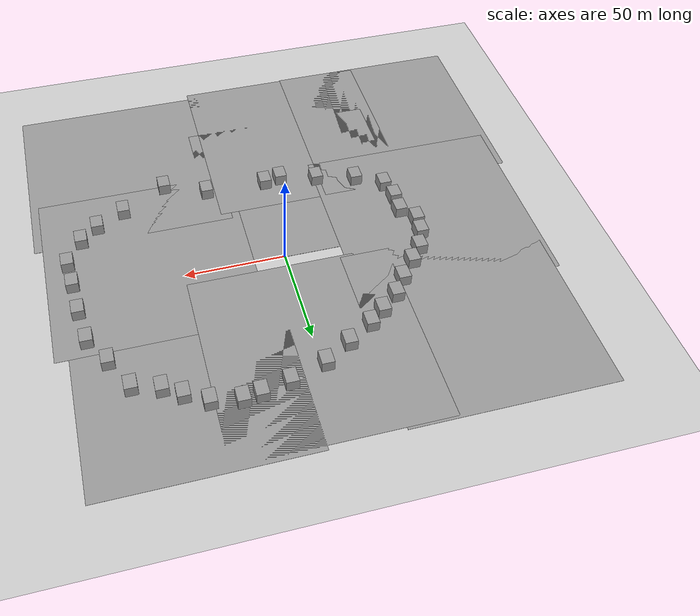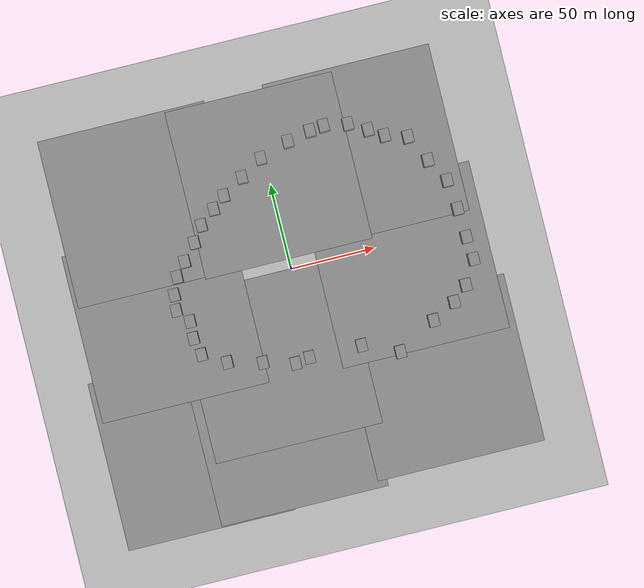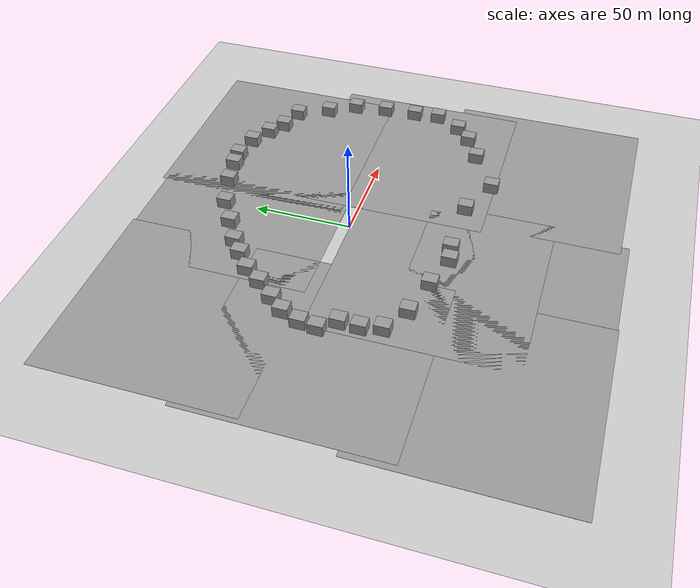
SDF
<sdf version="1.7">
 <world name="default">
  <light name="sun" type="directional">
   <pose>0 0 10 0 -0 0</pose>
   <diffuse>0.8 0.8 0.8 1</diffuse>
   <specular>0.2 0.2 0.2 1</specular>
   <attenuation>
    <range>1000</range>
    <constant>0.9</constant>
    <linear>0.01</linear>
    <quadratic>0.001</quadratic>
   </attenuation>
   <direction>-0.5 0.1 -0.9</direction>
   <spot><inner_angle>0</inner_angle><outer_angle>0</outer_angle><falloff>0</falloff></spot>
  </light>
  <plugin name="ros_interface_plugin" filename="librotors_gazebo_ros_interface_plugin.so"/>
  <model name="ground_plane">
   <static>1</static>
   <link name="link">
    <collision name="collision">
     <geometry><plane><normal>0 0 1</normal><size>100 100</size></plane></geometry>
     <surface>
      <contact><collide_bitmask>65535</collide_bitmask></contact>
      <friction><ode><mu>100</mu><mu2>50</mu2></ode></friction>
     </surface>
    </collision>
    <visual name="visual">
     <cast_shadows>0</cast_shadows>
     <geometry><plane><normal>0 0 1</normal><size>100 100</size></plane></geometry>
     <material>
      <script><uri>file://media/materials/scripts/gazebo.material</uri><name>Gazebo/Grey</name></script>
     </material>
    </visual>
   </link>
  </model>
  <gravity>0 0 -9.8</gravity>
  <magnetic_field>6e-06 2.3e-05 -4.2e-05</magnetic_field>
  <atmosphere type="adiabatic"/>
  <physics type="ode">
   <max_step_size>0.001</max_step_size>
   <real_time_factor>1</real_time_factor>
   <real_time_update_rate>1000</real_time_update_rate>
  </physics>
  <scene><ambient>0.4 0.4 0.4 1</ambient><background>0.7 0.7 0.7 1</background><shadows>1</shadows></scene>
  <spherical_coordinates>
   <surface_model>EARTH_WGS84</surface_model>
   <latitude_deg>0</latitude_deg>
   <longitude_deg>0</longitude_deg>
   <elevation>0</elevation>
   <heading_deg>0</heading_deg>
  </spherical_coordinates>
  <model name="ground_plane_0">
   <static>1</static>
   <link name="link">
    <collision name="collision">
     <geometry><plane><normal>0 0 1</normal><size>100 100</size></plane></geometry>
     <surface>
      <contact><collide_bitmask>65535</collide_bitmask></contact>
      <friction><ode><mu>100</mu><mu2>50</mu2></ode></friction>
     </surface>
    </collision>
    <visual name="visual">
     <cast_shadows>0</cast_shadows>
     <geometry><plane><normal>0 0 1</normal><size>100 100</size></plane></geometry>
     <material>
      <script><uri>file://media/materials/scripts/gazebo.material</uri><name>Gazebo/Grey</name></script>
     </material>
    </visual>
   </link>
   <pose>0.134979 55.8587 0 0 -0 0</pose>
  </model>
  <model name="ground_plane_1">
   <static>1</static>
   <link name="link">
    <collision name="collision">
     <geometry><plane><normal>0 0 1</normal><size>100 100</size></plane></geometry>
     <surface>
      <contact><collide_bitmask>65535</collide_bitmask></contact>
      <friction><ode><mu>100</mu><mu2>50</mu2></ode></friction>
     </surface>
    </collision>
    <visual name="visual">
     <cast_shadows>0</cast_shadows>
     <geometry><plane><normal>0 0 1</normal><size>100 100</size></plane></geometry>
     <material>
      <script><uri>file://media/materials/scripts/gazebo.material</uri><name>Gazebo/Grey</name></script>
     </material>
    </visual>
   </link>
   <pose>-76.0086 57.073 0 0 -0 0</pose>
  </model>
  <model name="ground_plane_2">
   <static>1</static>
   <link name="link">
    <collision name="collision">
     <geometry><plane><normal>0 0 1</normal><size>100 100</size></plane></geometry>
     <surface>
      <contact><collide_bitmask>65535</collide_bitmask></contact>
      <friction><ode><mu>100</mu><mu2>50</mu2></ode></friction>
     </surface>
    </collision>
    <visual name="visual">
     <cast_shadows>0</cast_shadows>
     <geometry><plane><normal>0 0 1</normal><size>100 100</size></plane></geometry>
     <material>
      <script><uri>file://media/materials/scripts/gazebo.material</uri><name>Gazebo/Grey</name></script>
     </material>
    </visual>
   </link>
   <pose>-78.2647 -11.3254 0 0 -0 0</pose>
  </model>
  <model name="ground_plane_3">
   <static>1</static>
   <link name="link">
    <collision name="collision">
     <geometry><plane><normal>0 0 1</normal><size>100 100</size></plane></geometry>
     <surface>
      <contact><collide_bitmask>65535</collide_bitmask></contact>
      <friction><ode><mu>100</mu><mu2>50</mu2></ode></friction>
     </surface>
    </collision>
    <visual name="visual">
     <cast_shadows>0</cast_shadows>
     <geometry><plane><normal>0 0 1</normal><size>100 100</size></plane></geometry>
     <material>
      <script><uri>file://media/materials/scripts/gazebo.material</uri><name>Gazebo/Grey</name></script>
     </material>
    </visual>
   </link>
   <pose>58.9506 58.0804 0 0 -0 0</pose>
  </model>
  <model name="ground_plane_4">
   <static>1</static>
   <link name="link">
    <collision name="collision">
     <geometry><plane><normal>0 0 1</normal><size>100 100</size></plane></geometry>
     <surface>
      <contact><collide_bitmask>65535</collide_bitmask></contact>
      <friction><ode><mu>100</mu><mu2>50</mu2></ode></friction>
     </surface>
    </collision>
    <visual name="visual">
     <cast_shadows>0</cast_shadows>
     <geometry><plane><normal>0 0 1</normal><size>100 100</size></plane></geometry>
     <material>
      <script><uri>file://media/materials/scripts/gazebo.material</uri><name>Gazebo/Grey</name></script>
     </material>
    </visual>
   </link>
   <pose>65.3897 -13.8592 0 0 -0 0</pose>
  </model>
  <model name="ground_plane_5">
   <static>1</static>
   <link name="link">
    <collision name="collision">
     <geometry><plane><normal>0 0 1</normal><size>100 100</size></plane></geometry>
     <surface>
      <contact><collide_bitmask>65535</collide_bitmask></contact>
      <friction><ode><mu>100</mu><mu2>50</mu2></ode></friction>
     </surface>
    </collision>
    <visual name="visual">
     <cast_shadows>0</cast_shadows>
     <geometry><plane><normal>0 0 1</normal><size>100 100</size></plane></geometry>
     <material>
      <script><uri>file://media/materials/scripts/gazebo.material</uri><name>Gazebo/Grey</name></script>
     </material>
    </visual>
   </link>
   <pose>-19.7587 -49.9788 0 0 -0 0</pose>
  </model>
  <model name="ground_plane_6">
   <static>1</static>
   <link name="link">
    <collision name="collision">
     <geometry><plane><normal>0 0 1</normal><size>100 100</size></plane></geometry>
     <surface>
      <contact><collide_bitmask>65535</collide_bitmask></contact>
      <friction><ode><mu>100</mu><mu2>50</mu2></ode></friction>
     </surface>
    </collision>
    <visual name="visual">
     <cast_shadows>0</cast_shadows>
     <geometry><plane><normal>0 0 1</normal><size>100 100</size></plane></geometry>
     <material>
      <script><uri>file://media/materials/scripts/gazebo.material</uri><name>Gazebo/Grey</name></script>
     </material>
    </visual>
   </link>
   <pose>69.4064 -82.4904 0 0 -0 0</pose>
  </model>
  <model name="ground_plane_7">
   <static>1</static>
   <link name="link">
    <collision name="collision">
     <geometry><plane><normal>0 0 1</normal><size>100 100</size></plane></geometry>
     <surface>
      <contact><collide_bitmask>65535</collide_bitmask></contact>
      <friction><ode><mu>100</mu><mu2>50</mu2></ode></friction>
     </surface>
    </collision>
    <visual name="visual">
     <cast_shadows>0</cast_shadows>
     <geometry><plane><normal>0 0 1</normal><size>100 100</size></plane></geometry>
     <material>
      <script><uri>file://media/materials/scripts/gazebo.material</uri><name>Gazebo/Grey</name></script>
     </material>
    </visual>
   </link>
   <pose>-25.341 -86.3777 0 0 -0 0</pose>
  </model>
  <model name="ground_plane_8">
   <static>1</static>
   <link name="link">
    <collision name="collision">
     <geometry><plane><normal>0 0 1</normal><size>100 100</size></plane></geometry>
     <surface>
      <contact><collide_bitmask>65535</collide_bitmask></contact>
      <friction><ode><mu>100</mu><mu2>50</mu2></ode></friction>
     </surface>
    </collision>
    <visual name="visual">
     <cast_shadows>0</cast_shadows>
     <geometry><plane><normal>0 0 1</normal><size>100 100</size></plane></geometry>
     <material>
      <script><uri>file://media/materials/scripts/gazebo.material</uri><name>Gazebo/Grey</name></script>
     </material>
    </visual>
   </link>
   <pose>-81.2843 -86.9604 0 0 -0 0</pose>
  </model>
  <model name="unit_box">
   <pose>-64.2534 -15.6959 3 -1e-06 0 0.002261</pose>
   <link name="link">
    <inertial>
     <mass>1</mass>
     <inertia>
      <ixx>0.166667</ixx>
      <ixy>0</ixy>
      <ixz>0</ixz>
      <iyy>0.166667</iyy>
      <iyz>0</iyz>
      <izz>0.166667</izz>
     </inertia>
    </inertial>
    <collision name="collision"><geometry><box><size>6 7.49447 6</size></box></geometry></collision>
    <visual name="visual">
     <geometry><box><size>6 7.49447 6</size></box></geometry>
     <material>
      <script><name>Gazebo/Grey</name><uri>file://media/materials/scripts/gazebo.material</uri></script>
     </material>
    </visual>
   </link>
  </model>
  <model name="unit_box_clone">
   <pose>-64.7219 -25.7215 3 -1e-06 0 0.002261</pose>
   <link name="link">
    <inertial>
     <mass>1</mass>
     <inertia>
      <ixx>0.166667</ixx>
      <ixy>0</ixy>
      <ixz>0</ixz>
      <iyy>0.166667</iyy>
      <iyz>0</iyz>
      <izz>0.166667</izz>
     </inertia>
    </inertial>
    <collision name="collision"><geometry><box><size>6 7.49448 6</size></box></geometry></collision>
    <visual name="visual">
     <geometry><box><size>6 7.49448 6</size></box></geometry>
     <material>
      <script><name>Gazebo/Grey</name><uri>file://media/materials/scripts/gazebo.material</uri></script>
     </material>
    </visual>
   </link>
  </model>
  <model name="unit_box_clone_0">
   <pose>-62.4511 -36 3 1e-06 -0 0.002156</pose>
   <link name="link">
    <inertial>
     <mass>1</mass>
     <inertia>
      <ixx>0.166667</ixx>
      <ixy>0</ixy>
      <ixz>0</ixz>
      <iyy>0.166667</iyy>
      <iyz>0</iyz>
      <izz>0.166667</izz>
     </inertia>
    </inertial>
    <collision name="collision"><geometry><box><size>6 7.49448 6</size></box></geometry></collision>
    <visual name="visual">
     <geometry><box><size>6 7.49448 6</size></box></geometry>
     <material>
      <script><name>Gazebo/Grey</name><uri>file://media/materials/scripts/gazebo.material</uri></script>
     </material>
    </visual>
   </link>
  </model>
  <model name="unit_box_clone_1">
   <pose>-49 -44 3 1e-06 0 0.002052</pose>
   <link name="link">
    <inertial>
     <mass>1</mass>
     <inertia>
      <ixx>0.166667</ixx>
      <ixy>0</ixy>
      <ixz>0</ixz>
      <iyy>0.166667</iyy>
      <iyz>0</iyz>
      <izz>0.166667</izz>
     </inertia>
    </inertial>
    <collision name="collision"><geometry><box><size>6 7.49448 6</size></box></geometry></collision>
    <visual name="visual">
     <geometry><box><size>6 7.49448 6</size></box></geometry>
     <material>
      <script><name>Gazebo/Grey</name><uri>file://media/materials/scripts/gazebo.material</uri></script>
     </material>
    </visual>
   </link>
  </model>
  <model name="unit_box_clone_2">
   <pose>-29 -49 3 1e-06 -0 0.001974</pose>
   <link name="link">
    <inertial>
     <mass>1</mass>
     <inertia>
      <ixx>0.166667</ixx>
      <ixy>0</ixy>
      <ixz>0</ixz>
      <iyy>0.166667</iyy>
      <iyz>0</iyz>
      <izz>0.166667</izz>
     </inertia>
    </inertial>
    <collision name="collision"><geometry><box><size>6 7.49448 6</size></box></geometry></collision>
    <visual name="visual">
     <geometry><box><size>6 7.49448 6</size></box></geometry>
     <material>
      <script><name>Gazebo/Grey</name><uri>file://media/materials/scripts/gazebo.material</uri></script>
     </material>
    </visual>
   </link>
  </model>
  <model name="unit_box_clone_3">
   <pose>-2 -52.5614 3 -1e-06 -0 0.001872</pose>
   <link name="link">
    <inertial>
     <mass>1</mass>
     <inertia>
      <ixx>0.166667</ixx>
      <ixy>0</ixy>
      <ixz>0</ixz>
      <iyy>0.166667</iyy>
      <iyz>0</iyz>
      <izz>0.166667</izz>
     </inertia>
    </inertial>
    <collision name="collision"><geometry><box><size>6 7.49448 6</size></box></geometry></collision>
    <visual name="visual">
     <geometry><box><size>6 7.49448 6</size></box></geometry>
     <material>
      <script><name>Gazebo/Grey</name><uri>file://media/materials/scripts/gazebo.material</uri></script>
     </material>
    </visual>
   </link>
  </model>
  <model name="unit_box_clone_4">
   <pose>29 -53 3 1e-06 -0 0.001797</pose>
   <link name="link">
    <inertial>
     <mass>1</mass>
     <inertia>
      <ixx>0.166667</ixx>
      <ixy>0</ixy>
      <ixz>0</ixz>
      <iyy>0.166667</iyy>
      <iyz>0</iyz>
      <izz>0.166667</izz>
     </inertia>
    </inertial>
    <collision name="collision"><geometry><box><size>6 7.49448 6</size></box></geometry></collision>
    <visual name="visual">
     <geometry><box><size>6 7.49448 6</size></box></geometry>
     <material>
      <script><name>Gazebo/Grey</name><uri>file://media/materials/scripts/gazebo.material</uri></script>
     </material>
    </visual>
   </link>
  </model>
  <model name="unit_box_clone_5">
   <pose>-10.5901 -54 3 1e-06 0 0.001675</pose>
   <link name="link">
    <inertial>
     <mass>1</mass>
     <inertia>
      <ixx>0.166667</ixx>
      <ixy>0</ixy>
      <ixz>0</ixz>
      <iyy>0.166667</iyy>
      <iyz>0</iyz>
      <izz>0.166667</izz>
     </inertia>
    </inertial>
    <collision name="collision"><geometry><box><size>6 7.49448 6</size></box></geometry></collision>
    <visual name="visual">
     <geometry><box><size>6 7.49448 6</size></box></geometry>
     <material>
      <script><name>Gazebo/Grey</name><uri>file://media/materials/scripts/gazebo.material</uri></script>
     </material>
    </visual>
   </link>
  </model>
  <model name="unit_box_clone_6">
   <pose>50 -62 3 -1e-06 -0 0.001545</pose>
   <link name="link">
    <inertial>
     <mass>1</mass>
     <inertia>
      <ixx>0.166667</ixx>
      <ixy>0</ixy>
      <ixz>0</ixz>
      <iyy>0.166667</iyy>
      <iyz>0</iyz>
      <izz>0.166667</izz>
     </inertia>
    </inertial>
    <collision name="collision"><geometry><box><size>6 7.49448 6</size></box></geometry></collision>
    <visual name="visual">
     <geometry><box><size>6 7.49448 6</size></box></geometry>
     <material>
      <script><name>Gazebo/Grey</name><uri>file://media/materials/scripts/gazebo.material</uri></script>
     </material>
    </visual>
   </link>
  </model>
  <model name="unit_box_clone_7">
   <pose>73 -49 3 1e-06 0 0.00148</pose>
   <link name="link">
    <inertial>
     <mass>1</mass>
     <inertia>
      <ixx>0.166667</ixx>
      <ixy>0</ixy>
      <ixz>0</ixz>
      <iyy>0.166667</iyy>
      <iyz>0</iyz>
      <izz>0.166667</izz>
     </inertia>
    </inertial>
    <collision name="collision"><geometry><box><size>6 7.49448 6</size></box></geometry></collision>
    <visual name="visual">
     <geometry><box><size>6 7.49448 6</size></box></geometry>
     <material>
      <script><name>Gazebo/Grey</name><uri>file://media/materials/scripts/gazebo.material</uri></script>
     </material>
    </visual>
   </link>
  </model>
  <model name="unit_box_clone_8">
   <pose>96 -33.5428 3 -1e-06 -0 0.001395</pose>
   <link name="link">
    <inertial>
     <mass>1</mass>
     <inertia>
      <ixx>0.166667</ixx>
      <ixy>0</ixy>
      <ixz>0</ixz>
      <iyy>0.166667</iyy>
      <iyz>0</iyz>
      <izz>0.166667</izz>
     </inertia>
    </inertial>
    <collision name="collision"><geometry><box><size>6 7.49448 6</size></box></geometry></collision>
    <visual name="visual">
     <geometry><box><size>6 7.49448 6</size></box></geometry>
     <material>
      <script><name>Gazebo/Grey</name><uri>file://media/materials/scripts/gazebo.material</uri></script>
     </material>
    </visual>
   </link>
  </model>
  <model name="unit_box_clone_9">
   <pose>87.1491 -41.4499 3 1e-06 -0 0.001265</pose>
   <link name="link">
    <inertial>
     <mass>1</mass>
     <inertia>
      <ixx>0.166667</ixx>
      <ixy>0</ixy>
      <ixz>0</ixz>
      <iyy>0.166667</iyy>
      <iyz>0</iyz>
      <izz>0.166667</izz>
     </inertia>
    </inertial>
    <collision name="collision"><geometry><box><size>6 7.49448 6</size></box></geometry></collision>
    <visual name="visual">
     <geometry><box><size>6 7.49448 6</size></box></geometry>
     <material>
      <script><name>Gazebo/Grey</name><uri>file://media/materials/scripts/gazebo.material</uri></script>
     </material>
    </visual>
   </link>
  </model>
  <model name="unit_box_clone_10">
   <pose>103 -6.49237 3 1e-06 -0 0.001191</pose>
   <link name="link">
    <inertial>
     <mass>1</mass>
     <inertia>
      <ixx>0.166667</ixx>
      <ixy>0</ixy>
      <ixz>0</ixz>
      <iyy>0.166667</iyy>
      <iyz>0</iyz>
      <izz>0.166667</izz>
     </inertia>
    </inertial>
    <collision name="collision"><geometry><box><size>6 7.49448 6</size></box></geometry></collision>
    <visual name="visual">
     <geometry><box><size>6 7.49448 6</size></box></geometry>
     <material>
      <script><name>Gazebo/Grey</name><uri>file://media/materials/scripts/gazebo.material</uri></script>
     </material>
    </visual>
   </link>
  </model>
  <model name="unit_box_clone_11">
   <pose>104 -20 3 -1e-06 0 0.001137</pose>
   <link name="link">
    <inertial>
     <mass>1</mass>
     <inertia>
      <ixx>0.166667</ixx>
      <ixy>0</ixy>
      <ixz>0</ixz>
      <iyy>0.166667</iyy>
      <iyz>0</iyz>
      <izz>0.166667</izz>
     </inertia>
    </inertial>
    <collision name="collision"><geometry><box><size>6 7.49448 6</size></box></geometry></collision>
    <visual name="visual">
     <geometry><box><size>6 7.49448 6</size></box></geometry>
     <material>
      <script><name>Gazebo/Grey</name><uri>file://media/materials/scripts/gazebo.material</uri></script>
     </material>
    </visual>
   </link>
  </model>
  <model name="unit_box_clone_12">
   <pose>102 10.54 3 -1e-06 0 0.001068</pose>
   <link name="link">
    <inertial>
     <mass>1</mass>
     <inertia>
      <ixx>0.166667</ixx>
      <ixy>0</ixy>
      <ixz>0</ixz>
      <iyy>0.166667</iyy>
      <iyz>0</iyz>
      <izz>0.166667</izz>
     </inertia>
    </inertial>
    <collision name="collision"><geometry><box><size>6 7.49448 6</size></box></geometry></collision>
    <visual name="visual">
     <geometry><box><size>6 7.49448 6</size></box></geometry>
     <material>
      <script><name>Gazebo/Grey</name><uri>file://media/materials/scripts/gazebo.material</uri></script>
     </material>
    </visual>
   </link>
  </model>
  <model name="unit_box_clone_13">
   <pose>100 28 3 -1e-06 0 0.001021</pose>
   <link name="link">
    <inertial>
     <mass>1</mass>
     <inertia>
      <ixx>0.166667</ixx>
      <ixy>0</ixy>
      <ixz>0</ixz>
      <iyy>0.166667</iyy>
      <iyz>0</iyz>
      <izz>0.166667</izz>
     </inertia>
    </inertial>
    <collision name="collision"><geometry><box><size>6 7.49448 6</size></box></geometry></collision>
    <visual name="visual">
     <geometry><box><size>6 7.49448 6</size></box></geometry>
     <material>
      <script><name>Gazebo/Grey</name><uri>file://media/materials/scripts/gazebo.material</uri></script>
     </material>
    </visual>
   </link>
  </model>
  <model name="unit_box_clone_14">
   <pose>92 42 3 1e-06 -0 0.000976</pose>
   <link name="link">
    <inertial>
     <mass>1</mass>
     <inertia>
      <ixx>0.166667</ixx>
      <ixy>0</ixy>
      <ixz>0</ixz>
      <iyy>0.166667</iyy>
      <iyz>0</iyz>
      <izz>0.166667</izz>
     </inertia>
    </inertial>
    <collision name="collision"><geometry><box><size>6 7.49448 6</size></box></geometry></collision>
    <visual name="visual">
     <geometry><box><size>6 7.49448 6</size></box></geometry>
     <material>
      <script><name>Gazebo/Grey</name><uri>file://media/materials/scripts/gazebo.material</uri></script>
     </material>
    </visual>
   </link>
  </model>
  <model name="unit_box_clone_15">
   <pose>84 58 3 1e-06 -0 0.000932</pose>
   <link name="link">
    <inertial>
     <mass>1</mass>
     <inertia>
      <ixx>0.166667</ixx>
      <ixy>0</ixy>
      <ixz>0</ixz>
      <iyy>0.166667</iyy>
      <iyz>0</iyz>
      <izz>0.166667</izz>
     </inertia>
    </inertial>
    <collision name="collision"><geometry><box><size>6 7.49448 6</size></box></geometry></collision>
    <visual name="visual">
     <geometry><box><size>6 7.49448 6</size></box></geometry>
     <material>
      <script><name>Gazebo/Grey</name><uri>file://media/materials/scripts/gazebo.material</uri></script>
     </material>
    </visual>
   </link>
  </model>
  <model name="unit_box_clone_16">
   <pose>71 62 3 1e-06 -0 0.000905</pose>
   <link name="link">
    <inertial>
     <mass>1</mass>
     <inertia>
      <ixx>0.166667</ixx>
      <ixy>0</ixy>
      <ixz>0</ixz>
      <iyy>0.166667</iyy>
      <iyz>0</iyz>
      <izz>0.166667</izz>
     </inertia>
    </inertial>
    <collision name="collision"><geometry><box><size>6 7.49448 6</size></box></geometry></collision>
    <visual name="visual">
     <geometry><box><size>6 7.49448 6</size></box></geometry>
     <material>
      <script><name>Gazebo/Grey</name><uri>file://media/materials/scripts/gazebo.material</uri></script>
     </material>
    </visual>
   </link>
  </model>
  <model name="unit_box_clone_17">
   <pose>62.5265 67.5094 3 -1e-06 0 0.000864</pose>
   <link name="link">
    <inertial>
     <mass>1</mass>
     <inertia>
      <ixx>0.166667</ixx>
      <ixy>0</ixy>
      <ixz>0</ixz>
      <iyy>0.166667</iyy>
      <iyz>0</iyz>
      <izz>0.166667</izz>
     </inertia>
    </inertial>
    <collision name="collision"><geometry><box><size>6 7.49448 6</size></box></geometry></collision>
    <visual name="visual">
     <geometry><box><size>6 7.49448 6</size></box></geometry>
     <material>
      <script><name>Gazebo/Grey</name><uri>file://media/materials/scripts/gazebo.material</uri></script>
     </material>
    </visual>
   </link>
  </model>
  <model name="unit_box_clone_18">
   <pose>52 73.521 3 1e-06 -0 0.000837</pose>
   <link name="link">
    <inertial>
     <mass>1</mass>
     <inertia>
      <ixx>0.166667</ixx>
      <ixy>0</ixy>
      <ixz>0</ixz>
      <iyy>0.166667</iyy>
      <iyz>0</iyz>
      <izz>0.166667</izz>
     </inertia>
    </inertial>
    <collision name="collision"><geometry><box><size>6 7.49448 6</size></box></geometry></collision>
    <visual name="visual">
     <geometry><box><size>6 7.49448 6</size></box></geometry>
     <material>
      <script><name>Gazebo/Grey</name><uri>file://media/materials/scripts/gazebo.material</uri></script>
     </material>
    </visual>
   </link>
  </model>
  <model name="unit_box_clone_19">
   <pose>38 76 3 1e-06 -0 0.000804</pose>
   <link name="link">
    <inertial>
     <mass>1</mass>
     <inertia>
      <ixx>0.166667</ixx>
      <ixy>0</ixy>
      <ixz>0</ixz>
      <iyy>0.166667</iyy>
      <iyz>0</iyz>
      <izz>0.166667</izz>
     </inertia>
    </inertial>
    <collision name="collision"><geometry><box><size>6 7.49448 6</size></box></geometry></collision>
    <visual name="visual">
     <geometry><box><size>6 7.49448 6</size></box></geometry>
     <material>
      <script><name>Gazebo/Grey</name><uri>file://media/materials/scripts/gazebo.material</uri></script>
     </material>
    </visual>
   </link>
  </model>
  <model name="unit_box_clone_20">
   <pose>29.6231 75.0134 3 -1e-06 -0 0.000772</pose>
   <link name="link">
    <inertial>
     <mass>1</mass>
     <inertia>
      <ixx>0.166667</ixx>
      <ixy>0</ixy>
      <ixz>0</ixz>
      <iyy>0.166667</iyy>
      <iyz>0</iyz>
      <izz>0.166667</izz>
     </inertia>
    </inertial>
    <collision name="collision"><geometry><box><size>6 7.49448 6</size></box></geometry></collision>
    <visual name="visual">
     <geometry><box><size>6 7.49448 6</size></box></geometry>
     <material>
      <script><name>Gazebo/Grey</name><uri>file://media/materials/scripts/gazebo.material</uri></script>
     </material>
    </visual>
   </link>
  </model>
  <model name="unit_box_clone_21">
   <pose>15.7731 72.1013 3 -1e-06 -0 0.000738</pose>
   <link name="link">
    <inertial>
     <mass>1</mass>
     <inertia>
      <ixx>0.166667</ixx>
      <ixy>0</ixy>
      <ixz>0</ixz>
      <iyy>0.166667</iyy>
      <iyz>0</iyz>
      <izz>0.166667</izz>
     </inertia>
    </inertial>
    <collision name="collision"><geometry><box><size>6 7.49448 6</size></box></geometry></collision>
    <visual name="visual">
     <geometry><box><size>6 7.49448 6</size></box></geometry>
     <material>
      <script><name>Gazebo/Grey</name><uri>file://media/materials/scripts/gazebo.material</uri></script>
     </material>
    </visual>
   </link>
  </model>
  <model name="unit_box_clone_22">
   <pose>-1.83591 66.3427 3 -1e-06 -0 0.000639</pose>
   <link name="link">
    <inertial>
     <mass>1</mass>
     <inertia>
      <ixx>0.166667</ixx>
      <ixy>0</ixy>
      <ixz>0</ixz>
      <iyy>0.166667</iyy>
      <iyz>0</iyz>
      <izz>0.166667</izz>
     </inertia>
    </inertial>
    <collision name="collision"><geometry><box><size>6 7.49448 6</size></box></geometry></collision>
    <visual name="visual">
     <geometry><box><size>6 7.49448 6</size></box></geometry>
     <material>
      <script><name>Gazebo/Grey</name><uri>file://media/materials/scripts/gazebo.material</uri></script>
     </material>
    </visual>
   </link>
  </model>
  <model name="unit_box_clone_23">
   <pose>-15.06 58.2492 3 -1e-06 -0 0.000615</pose>
   <link name="link">
    <inertial>
     <mass>1</mass>
     <inertia>
      <ixx>0.166667</ixx>
      <ixy>0</ixy>
      <ixz>0</ixz>
      <iyy>0.166667</iyy>
      <iyz>0</iyz>
      <izz>0.166667</izz>
     </inertia>
    </inertial>
    <collision name="collision"><geometry><box><size>6 7.49448 6</size></box></geometry></collision>
    <visual name="visual">
     <geometry><box><size>6 7.49448 6</size></box></geometry>
     <material>
      <script><name>Gazebo/Grey</name><uri>file://media/materials/scripts/gazebo.material</uri></script>
     </material>
    </visual>
   </link>
  </model>
  <model name="unit_box_clone_24">
   <pose>-27.8396 50.4282 3 1e-06 -0 0.000545</pose>
   <link name="link">
    <inertial>
     <mass>1</mass>
     <inertia>
      <ixx>0.166667</ixx>
      <ixy>0</ixy>
      <ixz>0</ixz>
      <iyy>0.166667</iyy>
      <iyz>0</iyz>
      <izz>0.166667</izz>
     </inertia>
    </inertial>
    <collision name="collision"><geometry><box><size>6 7.49448 6</size></box></geometry></collision>
    <visual name="visual">
     <geometry><box><size>6 7.49448 6</size></box></geometry>
     <material>
      <script><name>Gazebo/Grey</name><uri>file://media/materials/scripts/gazebo.material</uri></script>
     </material>
    </visual>
   </link>
  </model>
  <model name="unit_box_clone_25">
   <pose>-35.5079 44.2955 3 -1e-06 0 0.000516</pose>
   <link name="link">
    <inertial>
     <mass>1</mass>
     <inertia>
      <ixx>0.166667</ixx>
      <ixy>0</ixy>
      <ixz>0</ixz>
      <iyy>0.166667</iyy>
      <iyz>0</iyz>
      <izz>0.166667</izz>
     </inertia>
    </inertial>
    <collision name="collision"><geometry><box><size>6 7.49448 6</size></box></geometry></collision>
    <visual name="visual">
     <geometry><box><size>6 7.49448 6</size></box></geometry>
     <material>
      <script><name>Gazebo/Grey</name><uri>file://media/materials/scripts/gazebo.material</uri></script>
     </material>
    </visual>
   </link>
  </model>
  <model name="unit_box_clone_26">
   <pose>-44.6027 36.8217 3 1e-06 -0 0.000482</pose>
   <link name="link">
    <inertial>
     <mass>1</mass>
     <inertia>
      <ixx>0.166667</ixx>
      <ixy>0</ixy>
      <ixz>0</ixz>
      <iyy>0.166667</iyy>
      <iyz>0</iyz>
      <izz>0.166667</izz>
     </inertia>
    </inertial>
    <collision name="collision"><geometry><box><size>6 7.49448 6</size></box></geometry></collision>
    <visual name="visual">
     <geometry><box><size>6 7.49448 6</size></box></geometry>
     <material>
      <script><name>Gazebo/Grey</name><uri>file://media/materials/scripts/gazebo.material</uri></script>
     </material>
    </visual>
   </link>
  </model>
  <model name="unit_box_clone_27">
   <pose>-51 28 3 -1e-06 0 0.000459</pose>
   <link name="link">
    <inertial>
     <mass>1</mass>
     <inertia>
      <ixx>0.166667</ixx>
      <ixy>0</ixy>
      <ixz>0</ixz>
      <iyy>0.166667</iyy>
      <iyz>0</iyz>
      <izz>0.166667</izz>
     </inertia>
    </inertial>
    <collision name="collision"><geometry><box><size>6 7.49448 6</size></box></geometry></collision>
    <visual name="visual">
     <geometry><box><size>6 7.49448 6</size></box></geometry>
     <material>
      <script><name>Gazebo/Grey</name><uri>file://media/materials/scripts/gazebo.material</uri></script>
     </material>
    </visual>
   </link>
  </model>
  <model name="unit_box_clone_28">
   <pose>-59.092 18.6975 3 -1e-06 0 0.00041</pose>
   <link name="link">
    <inertial>
     <mass>1</mass>
     <inertia>
      <ixx>0.166667</ixx>
      <ixy>0</ixy>
      <ixz>0</ixz>
      <iyy>0.166667</iyy>
      <iyz>0</iyz>
      <izz>0.166667</izz>
     </inertia>
    </inertial>
    <collision name="collision"><geometry><box><size>6 7.49448 6</size></box></geometry></collision>
    <visual name="visual">
     <geometry><box><size>6 7.49448 6</size></box></geometry>
     <material>
      <script><name>Gazebo/Grey</name><uri>file://media/materials/scripts/gazebo.material</uri></script>
     </material>
    </visual>
   </link>
  </model>
  <model name="unit_box_clone_29">
   <pose>-65.4443 11.0815 3 1e-06 0 0.000371</pose>
   <link name="link">
    <inertial>
     <mass>1</mass>
     <inertia>
      <ixx>0.166667</ixx>
      <ixy>0</ixy>
      <ixz>0</ixz>
      <iyy>0.166667</iyy>
      <iyz>0</iyz>
      <izz>0.166667</izz>
     </inertia>
    </inertial>
    <collision name="collision"><geometry><box><size>6 7.49448 6</size></box></geometry></collision>
    <visual name="visual">
     <geometry><box><size>6 7.49448 6</size></box></geometry>
     <material>
      <script><name>Gazebo/Grey</name><uri>file://media/materials/scripts/gazebo.material</uri></script>
     </material>
    </visual>
   </link>
  </model>
  <model name="unit_box_clone_30">
   <pose>-69.4812 1.32708 3 -1e-06 -0 0.00033</pose>
   <link name="link">
    <inertial>
     <mass>1</mass>
     <inertia>
      <ixx>0.166667</ixx>
      <ixy>0</ixy>
      <ixz>0</ixz>
      <iyy>0.166667</iyy>
      <iyz>0</iyz>
      <izz>0.166667</izz>
     </inertia>
    </inertial>
    <collision name="collision"><geometry><box><size>6 7.49448 6</size></box></geometry></collision>
    <visual name="visual">
     <geometry><box><size>6 7.49448 6</size></box></geometry>
     <material>
      <script><name>Gazebo/Grey</name><uri>file://media/materials/scripts/gazebo.material</uri></script>
     </material>
    </visual>
   </link>
  </model>
  <model name="unit_box_clone_31">
   <pose>-70.5807 -7.58494 3 -1e-06 -0 0.000292</pose>
   <link name="link">
    <inertial>
     <mass>1</mass>
     <inertia>
      <ixx>0.166667</ixx>
      <ixy>0</ixy>
      <ixz>0</ixz>
      <iyy>0.166667</iyy>
      <iyz>0</iyz>
      <izz>0.166667</izz>
     </inertia>
    </inertial>
    <collision name="collision"><geometry><box><size>6 7.49448 6</size></box></geometry></collision>
    <visual name="visual">
     <geometry><box><size>6 7.49448 6</size></box></geometry>
     <material>
      <script><name>Gazebo/Grey</name><uri>file://media/materials/scripts/gazebo.material</uri></script>
     </material>
    </visual>
   </link>
  </model>
 </world>
</sdf>
